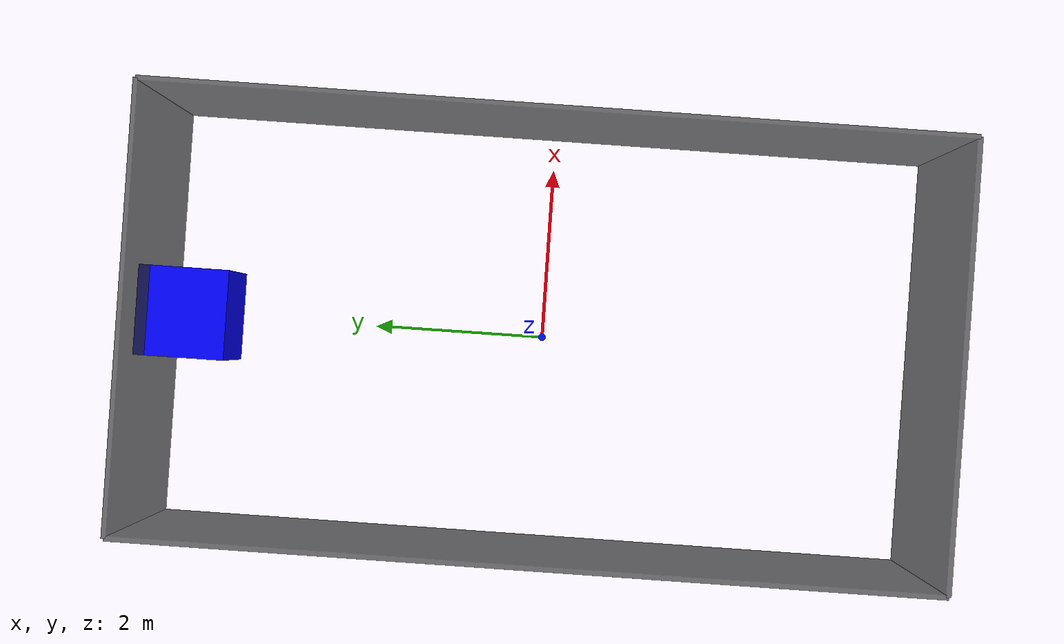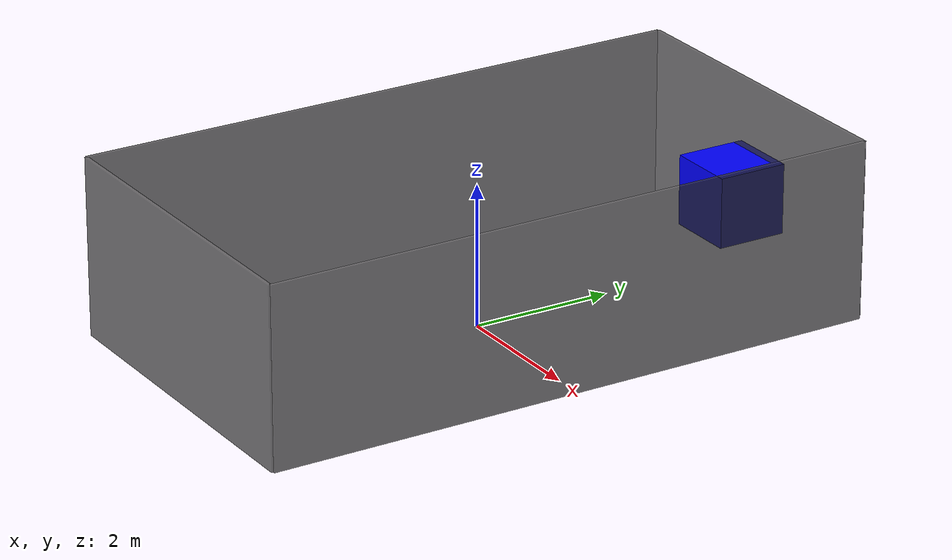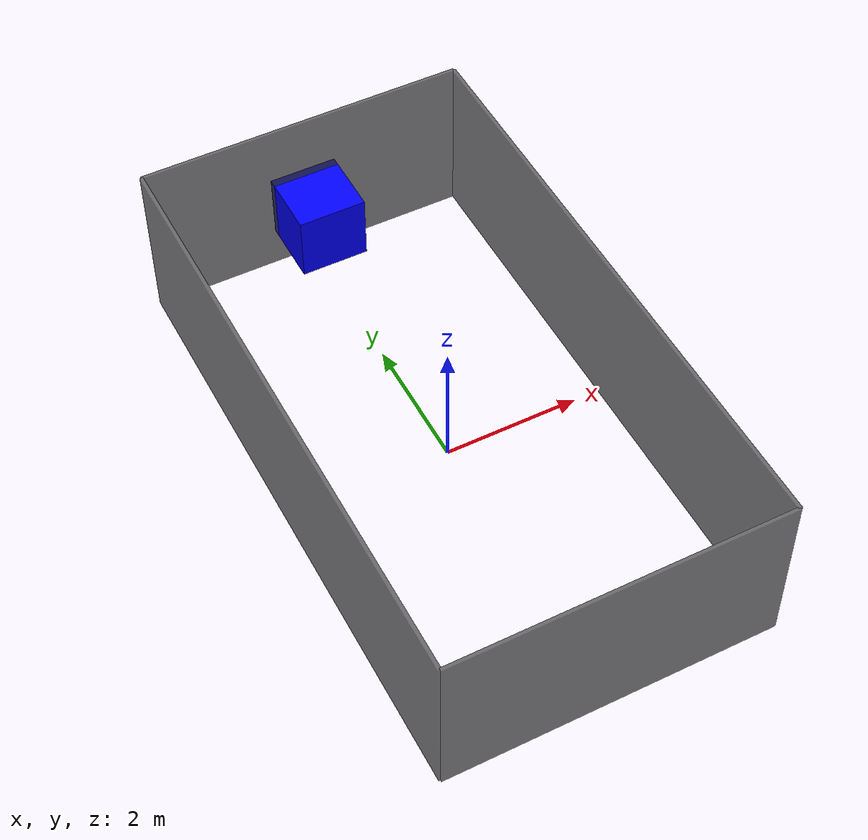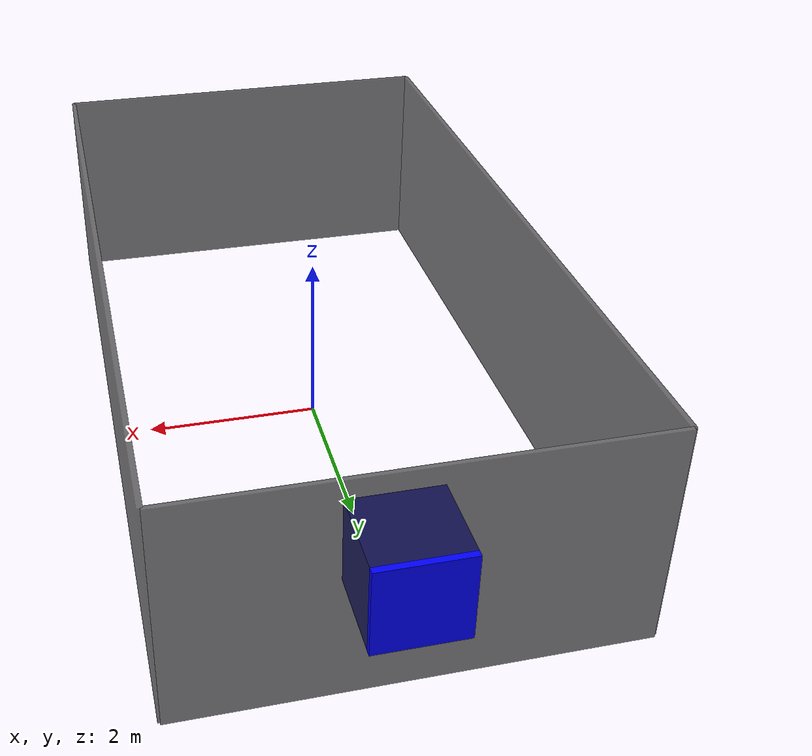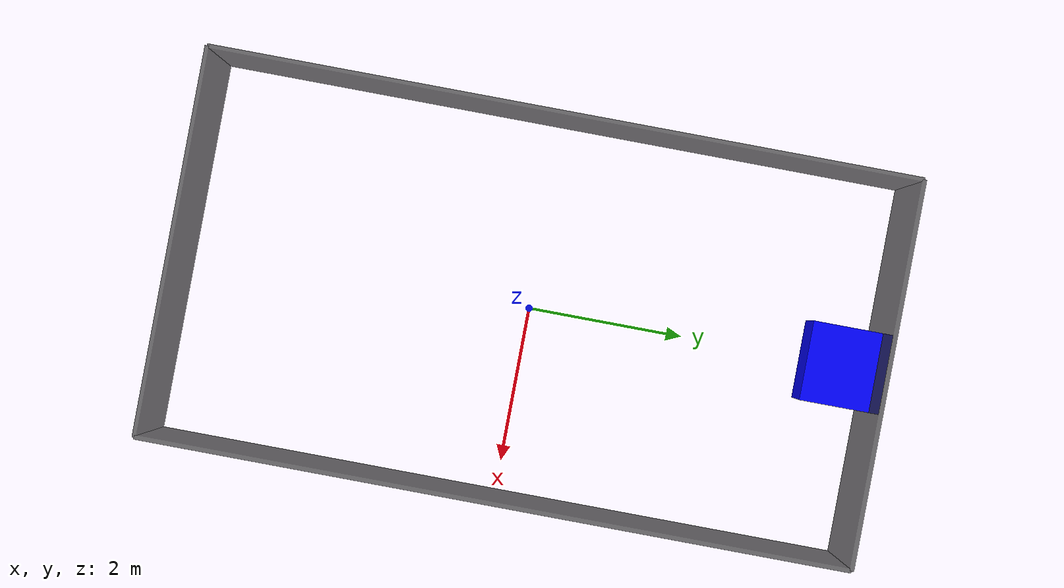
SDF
<sdf version="1.9">
 <world name="orl">
  <plugin filename="gz-sim-physics-system" name="gz::sim::systems::Physics"/>
  <plugin filename="gz-sim-user-commands-system" name="gz::sim::systems::UserCommands"/>
  <plugin filename="gz-sim-scene-broadcaster-system" name="gz::sim::systems::SceneBroadcaster"/>
  <plugin filename="gz-sim-apply-link-wrench-system" name="gz::sim::systems::ApplyLinkWrench"/>
  <include><uri>model://walls</uri></include>
  <include><uri>model://obstacle</uri><pose>0 4 1 0 0 0</pose></include>
  <light type="directional" name="sun">
   <pose>0 0 10 0 0 0</pose>
   <diffuse>0.8 0.8 0.8 1</diffuse>
   <specular>0.2 0.2 0.2 1</specular>
   <attenuation>
    <range>1000</range>
    <constant>0.9</constant>
    <linear>0.01</linear>
    <quadratic>0.001</quadratic>
   </attenuation>
   <direction>-0.5 0.1 -0.9</direction>
  </light>
  <physics type="ignored">
   <max_step_size>0.001</max_step_size>
   <real_time_update_rate>0</real_time_update_rate>
   <real_time_factor>2</real_time_factor>
  </physics>
 </world>
</sdf>

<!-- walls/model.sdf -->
<sdf version='1.9'>
  <model name='walls'>
    <static>true</static>

    <!-- Wall 1, back wall of the ORL -->
    <link name='wall1'>
      <!--Position and orientation of the wall-->
      <pose>0 4.4 0 0 0 0</pose>

      <!-- Specify the shape for collisions -->
      <collision name='collision'>
        <pose>0 0 1.25 0 0 0</pose>
        <geometry>
          <box>
            <size>4.8 0.05 2.5</size>
          </box>
        </geometry>
      </collision>

      <!-- Specify the shape and material for visualization -->
      <visual name='visual'>
        <pose>0 0 1.25 0 0 0</pose>
        <geometry>
          <box>
            <size>4.8 0.05 2.5</size>
          </box>
        </geometry>
        <material>
          <ambient>0.25 0.25 0.25 0.75</ambient>
          <diffuse>0.25 0.25 0.25 0.75</diffuse>
          <specular>0 0 0 0</specular>
          <emissive>0 0 0 1</emissive>
        </material>
        <meta>
          <layer>0</layer>
        </meta>
      </visual>
    </link>

    <!-- Wall 2, GRALS rail side of ORL -->
    <link name='wall2'>
      <!--Position and orientation of the wall-->
      <pose>2.4 0 0 0 0 1.5708</pose>

      <!-- Specify the shape for collisions -->
      <collision name='collision'>
        <pose>0 0 1.25 0 0 0</pose>
        <geometry>
          <box>
            <size>8.8 0.05 2.5</size>
          </box>
        </geometry>
      </collision>

      <!-- Specify the shape and material for visualization -->
      <visual name='visual'>
        <pose>0 0 1.25 0 0 0</pose>
        <geometry>
          <box>
            <size>8.8 0.05 2.5</size>
          </box>
        </geometry>
        <material>
          <ambient>0.25 0.25 0.25 0.75</ambient>
          <diffuse>0.25 0.25 0.25 0.75</diffuse>
          <specular>0 0 0 0</specular>
          <emissive>0 0 0 1</emissive>
        </material>
        <meta>
          <layer>0</layer>
        </meta>
      </visual>
    </link>

        <!-- Wall 3, entry area to the flat floor -->
    <link name='wall3'>
      <!-- Position and orientation of the wall -->
      <pose>0 -4.4 0 0 0 0</pose>

      <!-- Specify the shape for collisions -->
      <collision name='collision'>
        <pose>0 0 1.25 0 0 0</pose>
        <geometry>
          <box>
            <size>4.8 0.05 2.5</size>
          </box>
        </geometry>
      </collision>

      <!-- Specify the shape and material for visualization -->
      <visual name='visual'>
        <pose>0 0 1.25 0 0 0</pose>
        <geometry>
          <box>
            <size>4.8 0.05 2.5</size>
          </box>
        </geometry>
        <material>
          <ambient>0.25 0.25 0.25 0.75</ambient>
          <diffuse>0.25 0.25 0.25 0.75</diffuse>
          <specular>0 0 0 0</specular>
          <emissive>0 0 0 1</emissive>
        </material>
        <meta>
          <layer>0</layer>
        </meta>
      </visual>
    </link>

    <!-- Wall 4, metal mount side wall of ORL -->
    <link name='wall4'>
      <!--Position and orientation of the wall-->
      <pose>-2.4 0 0 0 0 1.5708</pose>

      <!-- Specify the shape for collisions -->
      <collision name='collision'>
        <pose>0 0 1.25 0 0 0</pose>
        <geometry>
          <box>
            <size>8.8 0.05 2.5</size>
          </box>
        </geometry>
      </collision>

      <!-- Specify the shape and material for visualization -->
      <visual name='visual'>
        <pose>0 0 1.25 0 0 0</pose>
        <geometry>
          <box>
            <size>8.8 0.05 2.5</size>
          </box>
        </geometry>
        <material>
          <ambient>0.25 0.25 0.25 0.75</ambient>
          <diffuse>0.25 0.25 0.25 0.75</diffuse>
          <specular>0 0 0 0</specular>
          <emissive>0 0 0 1</emissive>
        </material>
        <meta>
          <layer>0</layer>
        </meta>
      </visual>
    </link>

  </model>
</sdf>

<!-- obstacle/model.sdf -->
<sdf version="1.6">
  <model name="obstacle">
    <static>true</static> <!-- true = non si muove -->
    <link name="link">
      <collision name="collision">
        <geometry>
          <box>
            <size>1 1 1</size> <!-- lato 1 metro -->
          </box>
        </geometry>
      </collision>
      <visual name="visual">
        <geometry>
          <box>
            <size>1 1 1</size>
          </box>
        </geometry>
        <material>
          <ambient>0 0 1 1</ambient>  <!-- blu -->
          <diffuse>0 0 1 1</diffuse>
        </material>
      </visual>
    </link>
  </model>
</sdf>
